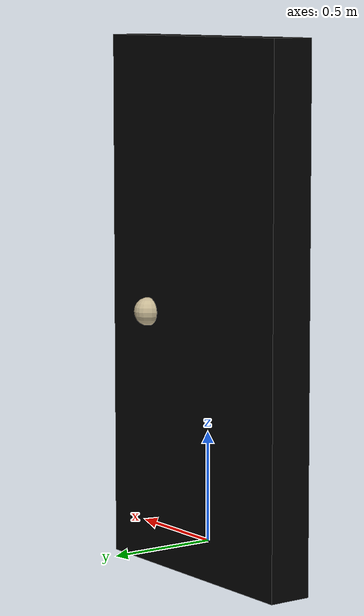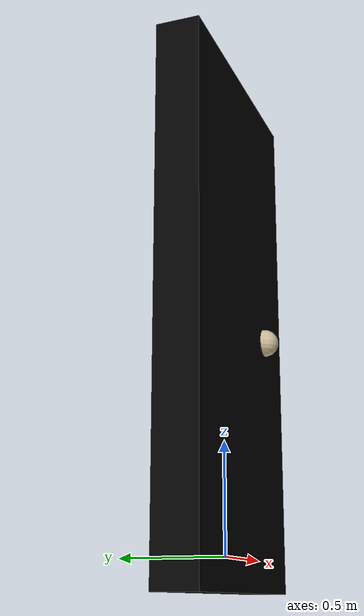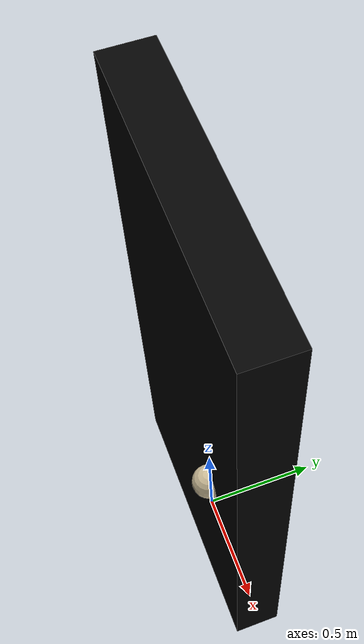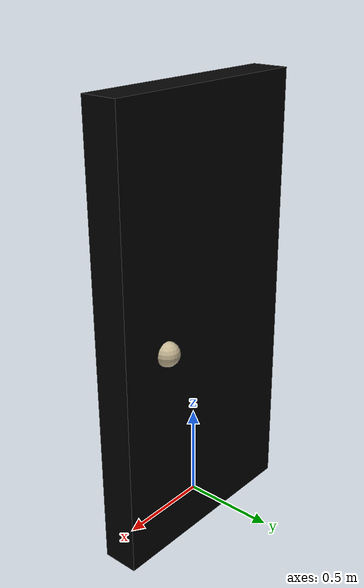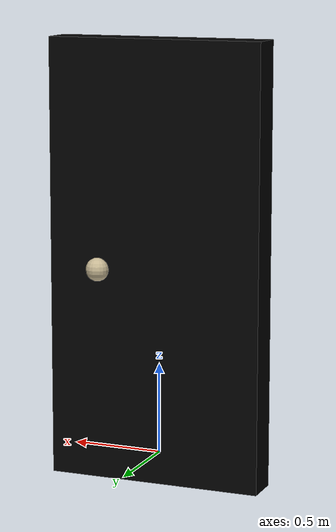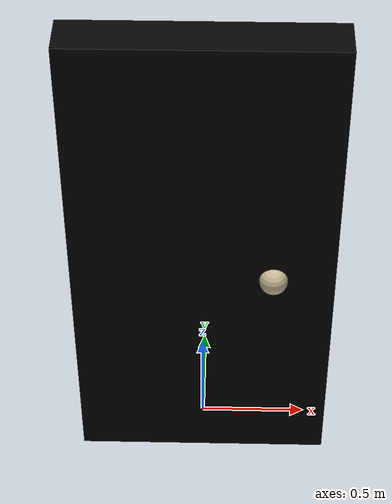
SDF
<?xml version="1.0"?>
<sdf version="1.10">
  <model name="door_model">
    <static>true</static>
    <link name="door_link">
      <collision name="door_collision">
        <pose>0 0 1.06 0 0 0</pose>
        <geometry>
          <box>
            <size>1.2 0.2 2.42</size>
          </box>
        </geometry>
      </collision>

      <visual name="door_slab_visual">
        <pose>0 0 1.06 0 0 0</pose>
        <geometry>
          <box>
            <size>1.2 0.2 2.42</size>
          </box>
        </geometry>
        <material>
          <ambient>0.005 0.005 0.005 1</ambient>
          <diffuse>0.012 0.012 0.012 1</diffuse>
          <specular>0.34 0.34 0.32 1</specular>
          <pbr>
            <metal>
              <metalness>0.0</metalness>
              <roughness>0.34</roughness>
            </metal>
          </pbr>
        </material>
      </visual>

      <visual name="front_knob_visual">
        <pose>0.32 -0.105 1.02 0 0 0</pose>
        <geometry>
          <sphere>
            <radius>0.065</radius>
          </sphere>
        </geometry>
        <material>
          <ambient>0.55 0.51 0.42 1</ambient>
          <diffuse>0.78 0.72 0.58 1</diffuse>
          <specular>0.78 0.74 0.62 1</specular>
          <pbr>
            <metal>
              <metalness>0.55</metalness>
              <roughness>0.25</roughness>
            </metal>
          </pbr>
        </material>
      </visual>

      <visual name="back_knob_visual">
        <pose>0.32 0.105 1.02 0 0 0</pose>
        <geometry>
          <sphere>
            <radius>0.065</radius>
          </sphere>
        </geometry>
        <material>
          <ambient>0.55 0.51 0.42 1</ambient>
          <diffuse>0.78 0.72 0.58 1</diffuse>
          <specular>0.78 0.74 0.62 1</specular>
          <pbr>
            <metal>
              <metalness>0.55</metalness>
              <roughness>0.25</roughness>
            </metal>
          </pbr>
        </material>
      </visual>
    </link>
  </model>
</sdf>
